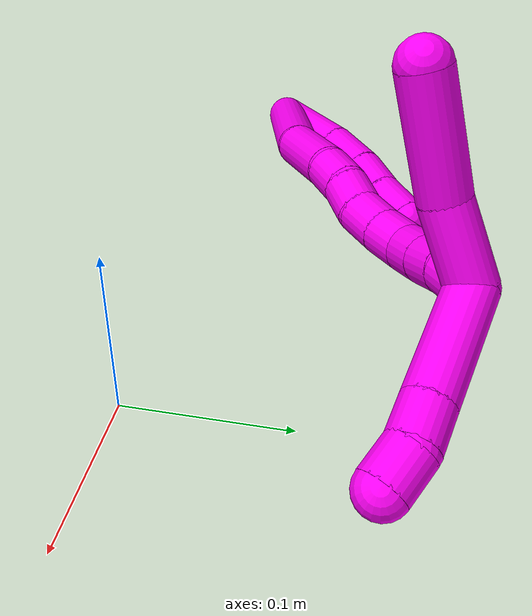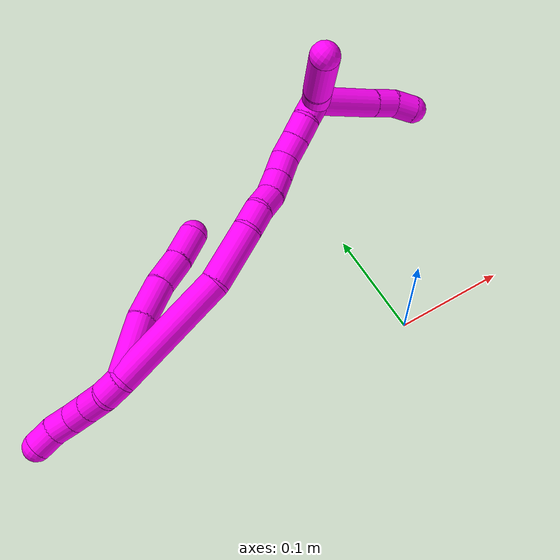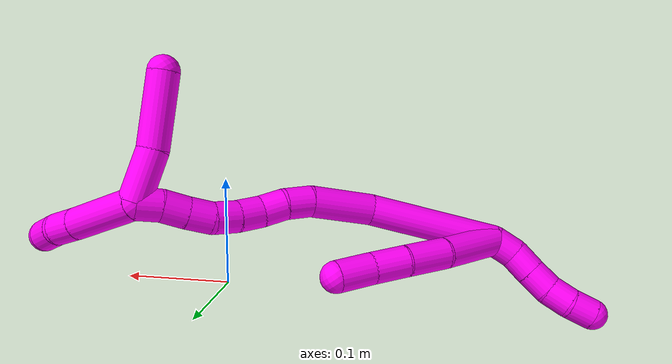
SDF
<sdf version="1.7">
 <world name="default">
  <model name="10">
   <static>0</static>
   <link name="10">
    <collision name="collision-cylinder-e_1_2_8">
     <pose>0.022596 0.012889 0.009663 -0.927495 0.951447 -0.504346</pose>
     <geometry><cylinder><radius>0.0125</radius><length>0.055501</length></cylinder></geometry>
     <surface>
      <friction><ode><mu>1.16</mu><mu2>1.16</mu2><slip1>0</slip1><slip2>0</slip2></ode></friction>
      <contact><ode><kp>1e+06</kp><kd>1</kd><max_vel>0</max_vel><min_depth>0.001</min_depth></ode></contact>
     </surface>
    </collision>
    <visual name="visual-cylinder-e_1_2_8">
     <pose>0.022596 0.012889 0.009663 -0.927495 0.951447 -0.504346</pose>
     <geometry><cylinder><radius>0.0125</radius><length>0.055501</length></cylinder></geometry>
     <material><ambient>1 0 0.964706 1</ambient></material>
    </visual>
    <collision name="collision-cylinder-e_2_8_9">
     <pose>0.060445 0.031482 0.026461 -0.674318 1.03121 -0.392229</pose>
     <geometry><cylinder><radius>0.0125</radius><length>0.035559</length></cylinder></geometry>
     <surface>
      <friction><ode><mu>1.16</mu><mu2>1.16</mu2><slip1>0</slip1><slip2>0</slip2></ode></friction>
      <contact><ode><kp>1e+06</kp><kd>1</kd><max_vel>0</max_vel><min_depth>0.001</min_depth></ode></contact>
     </surface>
    </collision>
    <visual name="visual-cylinder-e_2_8_9">
     <pose>0.060445 0.031482 0.026461 -0.674318 1.03121 -0.392229</pose>
     <geometry><cylinder><radius>0.0125</radius><length>0.035559</length></cylinder></geometry>
     <material><ambient>1 0 0.964706 1</ambient></material>
    </visual>
    <collision name="collision-cylinder-e_3_9_10">
     <pose>0.088632 0.039918 0.039335 -0.444476 1.11404 -0.279636</pose>
     <geometry><cylinder><radius>0.0125</radius><length>0.028821</length></cylinder></geometry>
     <surface>
      <friction><ode><mu>1.16</mu><mu2>1.16</mu2><slip1>0</slip1><slip2>0</slip2></ode></friction>
      <contact><ode><kp>1e+06</kp><kd>1</kd><max_vel>0</max_vel><min_depth>0.001</min_depth></ode></contact>
     </surface>
    </collision>
    <visual name="visual-cylinder-e_3_9_10">
     <pose>0.088632 0.039918 0.039335 -0.444476 1.11404 -0.279636</pose>
     <geometry><cylinder><radius>0.0125</radius><length>0.028821</length></cylinder></geometry>
     <material><ambient>1 0 0.964706 1</ambient></material>
    </visual>
    <collision name="collision-cylinder-e_4_10_6">
     <pose>0.114826 0.047011 0.050725 -0.657081 1.07698 -0.401794</pose>
     <geometry><cylinder><radius>0.0125</radius><length>0.03012</length></cylinder></geometry>
     <surface>
      <friction><ode><mu>1.16</mu><mu2>1.16</mu2><slip1>0</slip1><slip2>0</slip2></ode></friction>
      <contact><ode><kp>1e+06</kp><kd>1</kd><max_vel>0</max_vel><min_depth>0.001</min_depth></ode></contact>
     </surface>
    </collision>
    <visual name="visual-cylinder-e_4_10_6">
     <pose>0.114826 0.047011 0.050725 -0.657081 1.07698 -0.401794</pose>
     <geometry><cylinder><radius>0.0125</radius><length>0.03012</length></cylinder></geometry>
     <material><ambient>1 0 0.964706 1</ambient></material>
    </visual>
    <collision name="collision-cylinder-e_1_2_11">
     <pose>-0.003695 0.000799 -0.009258 -3.05554 -0.37842 2.69931</pose>
     <geometry><cylinder><radius>0.0125</radius><length>0.02</length></cylinder></geometry>
     <surface>
      <friction><ode><mu>1.16</mu><mu2>1.16</mu2><slip1>0</slip1><slip2>0</slip2></ode></friction>
      <contact><ode><kp>1e+06</kp><kd>1</kd><max_vel>0</max_vel><min_depth>0.001</min_depth></ode></contact>
     </surface>
    </collision>
    <visual name="visual-cylinder-e_1_2_11">
     <pose>-0.003695 0.000799 -0.009258 -3.05554 -0.37842 2.69931</pose>
     <geometry><cylinder><radius>0.0125</radius><length>0.02</length></cylinder></geometry>
     <material><ambient>1 0 0.964706 1</ambient></material>
    </visual>
    <collision name="collision-cylinder-e_2_11_12">
     <pose>-0.008305 0.003731 -0.028243 -2.92565 -0.091686 0.800744</pose>
     <geometry><cylinder><radius>0.0125</radius><length>0.02</length></cylinder></geometry>
     <surface>
      <friction><ode><mu>1.16</mu><mu2>1.16</mu2><slip1>0</slip1><slip2>0</slip2></ode></friction>
      <contact><ode><kp>1e+06</kp><kd>1</kd><max_vel>0</max_vel><min_depth>0.001</min_depth></ode></contact>
     </surface>
    </collision>
    <visual name="visual-cylinder-e_2_11_12">
     <pose>-0.008305 0.003731 -0.028243 -2.92565 -0.091686 0.800744</pose>
     <geometry><cylinder><radius>0.0125</radius><length>0.02</length></cylinder></geometry>
     <material><ambient>1 0 0.964706 1</ambient></material>
    </visual>
    <collision name="collision-cylinder-e_3_12_13">
     <pose>-0.010561 0.008048 -0.047636 -2.91941 -0.134463 1.08613</pose>
     <geometry><cylinder><radius>0.0125</radius><length>0.02</length></cylinder></geometry>
     <surface>
      <friction><ode><mu>1.16</mu><mu2>1.16</mu2><slip1>0</slip1><slip2>0</slip2></ode></friction>
      <contact><ode><kp>1e+06</kp><kd>1</kd><max_vel>0</max_vel><min_depth>0.001</min_depth></ode></contact>
     </surface>
    </collision>
    <visual name="visual-cylinder-e_3_12_13">
     <pose>-0.010561 0.008048 -0.047636 -2.91941 -0.134463 1.08613</pose>
     <geometry><cylinder><radius>0.0125</radius><length>0.02</length></cylinder></geometry>
     <material><ambient>1 0 0.964706 1</ambient></material>
    </visual>
    <collision name="collision-cylinder-e_4_13_14">
     <pose>-0.015256 0.012747 -0.066381 -2.87137 -0.342079 1.80803</pose>
     <geometry><cylinder><radius>0.0125</radius><length>0.02</length></cylinder></geometry>
     <surface>
      <friction><ode><mu>1.16</mu><mu2>1.16</mu2><slip1>0</slip1><slip2>0</slip2></ode></friction>
      <contact><ode><kp>1e+06</kp><kd>1</kd><max_vel>0</max_vel><min_depth>0.001</min_depth></ode></contact>
     </surface>
    </collision>
    <visual name="visual-cylinder-e_4_13_14">
     <pose>-0.015256 0.012747 -0.066381 -2.87137 -0.342079 1.80803</pose>
     <geometry><cylinder><radius>0.0125</radius><length>0.02</length></cylinder></geometry>
     <material><ambient>1 0 0.964706 1</ambient></material>
    </visual>
    <collision name="collision-cylinder-e_5_14_5">
     <pose>-0.023424 0.015896 -0.084202 -3.06917 -0.50218 2.86097</pose>
     <geometry><cylinder><radius>0.0125</radius><length>0.02</length></cylinder></geometry>
     <surface>
      <friction><ode><mu>1.16</mu><mu2>1.16</mu2><slip1>0</slip1><slip2>0</slip2></ode></friction>
      <contact><ode><kp>1e+06</kp><kd>1</kd><max_vel>0</max_vel><min_depth>0.001</min_depth></ode></contact>
     </surface>
    </collision>
    <visual name="visual-cylinder-e_5_14_5">
     <pose>-0.023424 0.015896 -0.084202 -3.06917 -0.50218 2.86097</pose>
     <geometry><cylinder><radius>0.0125</radius><length>0.02</length></cylinder></geometry>
     <material><ambient>1 0 0.964706 1</ambient></material>
    </visual>
    <collision name="collision-cylinder-e_1_2_15">
     <pose>0.034824 0.000315 0.039648 -0.007955 0.720698 -0.002998</pose>
     <geometry><cylinder><radius>0.0125</radius><length>0.105542</length></cylinder></geometry>
     <surface>
      <friction><ode><mu>1.16</mu><mu2>1.16</mu2><slip1>0</slip1><slip2>0</slip2></ode></friction>
      <contact><ode><kp>1e+06</kp><kd>1</kd><max_vel>0</max_vel><min_depth>0.001</min_depth></ode></contact>
     </surface>
    </collision>
    <visual name="visual-cylinder-e_1_2_15">
     <pose>0.034824 0.000315 0.039648 -0.007955 0.720698 -0.002998</pose>
     <geometry><cylinder><radius>0.0125</radius><length>0.105542</length></cylinder></geometry>
     <material><ambient>1 0 0.964706 1</ambient></material>
    </visual>
    <collision name="collision-cylinder-e_2_15_16">
     <pose>0.088421 0.006726 0.09608 -0.348355 0.810408 -0.150667</pose>
     <geometry><cylinder><radius>0.0125</radius><length>0.051818</length></cylinder></geometry>
     <surface>
      <friction><ode><mu>1.16</mu><mu2>1.16</mu2><slip1>0</slip1><slip2>0</slip2></ode></friction>
      <contact><ode><kp>1e+06</kp><kd>1</kd><max_vel>0</max_vel><min_depth>0.001</min_depth></ode></contact>
     </surface>
    </collision>
    <visual name="visual-cylinder-e_2_15_16">
     <pose>0.088421 0.006726 0.09608 -0.348355 0.810408 -0.150667</pose>
     <geometry><cylinder><radius>0.0125</radius><length>0.051818</length></cylinder></geometry>
     <material><ambient>1 0 0.964706 1</ambient></material>
    </visual>
    <collision name="collision-cylinder-e_3_16_17">
     <pose>0.116447 0.015663 0.117762 -0.525678 1.02168 -0.299345</pose>
     <geometry><cylinder><radius>0.0125</radius><length>0.021694</length></cylinder></geometry>
     <surface>
      <friction><ode><mu>1.16</mu><mu2>1.16</mu2><slip1>0</slip1><slip2>0</slip2></ode></friction>
      <contact><ode><kp>1e+06</kp><kd>1</kd><max_vel>0</max_vel><min_depth>0.001</min_depth></ode></contact>
     </surface>
    </collision>
    <visual name="visual-cylinder-e_3_16_17">
     <pose>0.116447 0.015663 0.117762 -0.525678 1.02168 -0.299345</pose>
     <geometry><cylinder><radius>0.0125</radius><length>0.021694</length></cylinder></geometry>
     <material><ambient>1 0 0.964706 1</ambient></material>
    </visual>
    <collision name="collision-cylinder-e_4_17_18">
     <pose>0.135174 0.019897 0.125591 -0.443521 1.24066 -0.319411</pose>
     <geometry><cylinder><radius>0.0125</radius><length>0.020031</length></cylinder></geometry>
     <surface>
      <friction><ode><mu>1.16</mu><mu2>1.16</mu2><slip1>0</slip1><slip2>0</slip2></ode></friction>
      <contact><ode><kp>1e+06</kp><kd>1</kd><max_vel>0</max_vel><min_depth>0.001</min_depth></ode></contact>
     </surface>
    </collision>
    <visual name="visual-cylinder-e_4_17_18">
     <pose>0.135174 0.019897 0.125591 -0.443521 1.24066 -0.319411</pose>
     <geometry><cylinder><radius>0.0125</radius><length>0.020031</length></cylinder></geometry>
     <material><ambient>1 0 0.964706 1</ambient></material>
    </visual>
    <collision name="collision-cylinder-e_5_18_19">
     <pose>0.153413 0.025064 0.132205 -0.797799 1.02928 -0.467953</pose>
     <geometry><cylinder><radius>0.0125</radius><length>0.020456</length></cylinder></geometry>
     <surface>
      <friction><ode><mu>1.16</mu><mu2>1.16</mu2><slip1>0</slip1><slip2>0</slip2></ode></friction>
      <contact><ode><kp>1e+06</kp><kd>1</kd><max_vel>0</max_vel><min_depth>0.001</min_depth></ode></contact>
     </surface>
    </collision>
    <visual name="visual-cylinder-e_5_18_19">
     <pose>0.153413 0.025064 0.132205 -0.797799 1.02928 -0.467953</pose>
     <geometry><cylinder><radius>0.0125</radius><length>0.020456</length></cylinder></geometry>
     <material><ambient>1 0 0.964706 1</ambient></material>
    </visual>
    <collision name="collision-cylinder-e_6_19_20">
     <pose>0.170232 0.03289 0.140559 -0.714378 0.915936 -0.363845</pose>
     <geometry><cylinder><radius>0.0125</radius><length>0.02031</length></cylinder></geometry>
     <surface>
      <friction><ode><mu>1.16</mu><mu2>1.16</mu2><slip1>0</slip1><slip2>0</slip2></ode></friction>
      <contact><ode><kp>1e+06</kp><kd>1</kd><max_vel>0</max_vel><min_depth>0.001</min_depth></ode></contact>
     </surface>
    </collision>
    <visual name="visual-cylinder-e_6_19_20">
     <pose>0.170232 0.03289 0.140559 -0.714378 0.915936 -0.363845</pose>
     <geometry><cylinder><radius>0.0125</radius><length>0.02031</length></cylinder></geometry>
     <material><ambient>1 0 0.964706 1</ambient></material>
    </visual>
    <collision name="collision-cylinder-e_7_20_21">
     <pose>0.184933 0.039649 0.152277 -0.366893 0.721998 -0.139865</pose>
     <geometry><cylinder><radius>0.0125</radius><length>0.020112</length></cylinder></geometry>
     <surface>
      <friction><ode><mu>1.16</mu><mu2>1.16</mu2><slip1>0</slip1><slip2>0</slip2></ode></friction>
      <contact><ode><kp>1e+06</kp><kd>1</kd><max_vel>0</max_vel><min_depth>0.001</min_depth></ode></contact>
     </surface>
    </collision>
    <visual name="visual-cylinder-e_7_20_21">
     <pose>0.184933 0.039649 0.152277 -0.366893 0.721998 -0.139865</pose>
     <geometry><cylinder><radius>0.0125</radius><length>0.020112</length></cylinder></geometry>
     <material><ambient>1 0 0.964706 1</ambient></material>
    </visual>
    <collision name="collision-cylinder-e_8_21_22">
     <pose>0.197696 0.045259 0.16669 -0.375308 0.657636 -0.129401</pose>
     <geometry><cylinder><radius>0.0125</radius><length>0.020014</length></cylinder></geometry>
     <surface>
      <friction><ode><mu>1.16</mu><mu2>1.16</mu2><slip1>0</slip1><slip2>0</slip2></ode></friction>
      <contact><ode><kp>1e+06</kp><kd>1</kd><max_vel>0</max_vel><min_depth>0.001</min_depth></ode></contact>
     </surface>
    </collision>
    <visual name="visual-cylinder-e_8_21_22">
     <pose>0.197696 0.045259 0.16669 -0.375308 0.657636 -0.129401</pose>
     <geometry><cylinder><radius>0.0125</radius><length>0.020014</length></cylinder></geometry>
     <material><ambient>1 0 0.964706 1</ambient></material>
    </visual>
    <collision name="collision-cylinder-e_9_22_1">
     <pose>0.211375 0.050894 0.180022 -0.429622 0.85638 -0.198512</pose>
     <geometry><cylinder><radius>0.0125</radius><length>0.020021</length></cylinder></geometry>
     <surface>
      <friction><ode><mu>1.16</mu><mu2>1.16</mu2><slip1>0</slip1><slip2>0</slip2></ode></friction>
      <contact><ode><kp>1e+06</kp><kd>1</kd><max_vel>0</max_vel><min_depth>0.001</min_depth></ode></contact>
     </surface>
    </collision>
    <visual name="visual-cylinder-e_9_22_1">
     <pose>0.211375 0.050894 0.180022 -0.429622 0.85638 -0.198512</pose>
     <geometry><cylinder><radius>0.0125</radius><length>0.020021</length></cylinder></geometry>
     <material><ambient>1 0 0.964706 1</ambient></material>
    </visual>
    <collision name="collision-cylinder-e_1_1_23">
     <pose>0.202214 0.052583 0.198322 0.084327 -0.933508 -0.04251</pose>
     <geometry><cylinder><radius>0.0125</radius><length>0.041617</length></cylinder></geometry>
     <surface>
      <friction><ode><mu>1.16</mu><mu2>1.16</mu2><slip1>0</slip1><slip2>0</slip2></ode></friction>
      <contact><ode><kp>1e+06</kp><kd>1</kd><max_vel>0</max_vel><min_depth>0.001</min_depth></ode></contact>
     </surface>
    </collision>
    <visual name="visual-cylinder-e_1_1_23">
     <pose>0.202214 0.052583 0.198322 0.084327 -0.933508 -0.04251</pose>
     <geometry><cylinder><radius>0.0125</radius><length>0.041617</length></cylinder></geometry>
     <material><ambient>1 0 0.964706 1</ambient></material>
    </visual>
    <collision name="collision-cylinder-e_2_23_4">
     <pose>0.165813 0.053173 0.232161 -0.075765 -0.739664 0.029384</pose>
     <geometry><cylinder><radius>0.0125</radius><length>0.058383</length></cylinder></geometry>
     <surface>
      <friction><ode><mu>1.16</mu><mu2>1.16</mu2><slip1>0</slip1><slip2>0</slip2></ode></friction>
      <contact><ode><kp>1e+06</kp><kd>1</kd><max_vel>0</max_vel><min_depth>0.001</min_depth></ode></contact>
     </surface>
    </collision>
    <visual name="visual-cylinder-e_2_23_4">
     <pose>0.165813 0.053173 0.232161 -0.075765 -0.739664 0.029384</pose>
     <geometry><cylinder><radius>0.0125</radius><length>0.058383</length></cylinder></geometry>
     <material><ambient>1 0 0.964706 1</ambient></material>
    </visual>
    <collision name="collision-cylinder-e_1_1_24">
     <pose>0.241583 0.036538 0.193353 1.16366 0.882902 0.602746</pose>
     <geometry><cylinder><radius>0.0125</radius><length>0.058622</length></cylinder></geometry>
     <surface>
      <friction><ode><mu>1.16</mu><mu2>1.16</mu2><slip1>0</slip1><slip2>0</slip2></ode></friction>
      <contact><ode><kp>1e+06</kp><kd>1</kd><max_vel>0</max_vel><min_depth>0.001</min_depth></ode></contact>
     </surface>
    </collision>
    <visual name="visual-cylinder-e_1_1_24">
     <pose>0.241583 0.036538 0.193353 1.16366 0.882902 0.602746</pose>
     <geometry><cylinder><radius>0.0125</radius><length>0.058622</length></cylinder></geometry>
     <material><ambient>1 0 0.964706 1</ambient></material>
    </visual>
    <collision name="collision-cylinder-e_2_24_25">
     <pose>0.272293 0.013488 0.203756 1.10005 0.878446 0.560957</pose>
     <geometry><cylinder><radius>0.0125</radius><length>0.020955</length></cylinder></geometry>
     <surface>
      <friction><ode><mu>1.16</mu><mu2>1.16</mu2><slip1>0</slip1><slip2>0</slip2></ode></friction>
      <contact><ode><kp>1e+06</kp><kd>1</kd><max_vel>0</max_vel><min_depth>0.001</min_depth></ode></contact>
     </surface>
    </collision>
    <visual name="visual-cylinder-e_2_24_25">
     <pose>0.272293 0.013488 0.203756 1.10005 0.878446 0.560957</pose>
     <geometry><cylinder><radius>0.0125</radius><length>0.020955</length></cylinder></geometry>
     <material><ambient>1 0 0.964706 1</ambient></material>
    </visual>
    <collision name="collision-cylinder-e_3_25_3">
     <pose>0.286592 -0.000406 0.208366 1.37463 0.656618 0.545285</pose>
     <geometry><cylinder><radius>0.0125</radius><length>0.020423</length></cylinder></geometry>
     <surface>
      <friction><ode><mu>1.16</mu><mu2>1.16</mu2><slip1>0</slip1><slip2>0</slip2></ode></friction>
      <contact><ode><kp>1e+06</kp><kd>1</kd><max_vel>0</max_vel><min_depth>0.001</min_depth></ode></contact>
     </surface>
    </collision>
    <visual name="visual-cylinder-e_3_25_3">
     <pose>0.286592 -0.000406 0.208366 1.37463 0.656618 0.545285</pose>
     <geometry><cylinder><radius>0.0125</radius><length>0.020423</length></cylinder></geometry>
     <material><ambient>1 0 0.964706 1</ambient></material>
    </visual>
    <collision name="collision-sphere-3">
     <pose>0.292825 -0.008339 0.209942 0 -0 0</pose>
     <geometry><sphere><radius>0.0125</radius></sphere></geometry>
     <surface>
      <friction><ode><mu>1.16</mu><mu2>1.16</mu2><slip1>0</slip1><slip2>0</slip2></ode></friction>
      <contact><ode><kp>1e+06</kp><kd>1</kd><max_vel>0</max_vel><min_depth>0.001</min_depth></ode></contact>
     </surface>
    </collision>
    <visual name="visual-sphere-3">
     <pose>0.292825 -0.008339 0.209942 0 -0 0</pose>
     <geometry><sphere><radius>0.0125</radius></sphere></geometry>
     <material><ambient>1 0 0.964706 1</ambient></material>
    </visual>
    <collision name="collision-sphere-25">
     <pose>0.280358 0.007527 0.206789 0 -0 0</pose>
     <geometry><sphere><radius>0.0125</radius></sphere></geometry>
     <surface>
      <friction><ode><mu>1.16</mu><mu2>1.16</mu2><slip1>0</slip1><slip2>0</slip2></ode></friction>
      <contact><ode><kp>1e+06</kp><kd>1</kd><max_vel>0</max_vel><min_depth>0.001</min_depth></ode></contact>
     </surface>
    </collision>
    <visual name="visual-sphere-25">
     <pose>0.280358 0.007527 0.206789 0 -0 0</pose>
     <geometry><sphere><radius>0.0125</radius></sphere></geometry>
     <material><ambient>1 0 0.964706 1</ambient></material>
    </visual>
    <collision name="collision-sphere-24">
     <pose>0.264228 0.019449 0.200722 0 -0 0</pose>
     <geometry><sphere><radius>0.0125</radius></sphere></geometry>
     <surface>
      <friction><ode><mu>1.16</mu><mu2>1.16</mu2><slip1>0</slip1><slip2>0</slip2></ode></friction>
      <contact><ode><kp>1e+06</kp><kd>1</kd><max_vel>0</max_vel><min_depth>0.001</min_depth></ode></contact>
     </surface>
    </collision>
    <visual name="visual-sphere-24">
     <pose>0.264228 0.019449 0.200722 0 -0 0</pose>
     <geometry><sphere><radius>0.0125</radius></sphere></geometry>
     <material><ambient>1 0 0.964706 1</ambient></material>
    </visual>
    <collision name="collision-sphere-4">
     <pose>0.146137 0.054805 0.253663 0 -0 0</pose>
     <geometry><sphere><radius>0.0125</radius></sphere></geometry>
     <surface>
      <friction><ode><mu>1.16</mu><mu2>1.16</mu2><slip1>0</slip1><slip2>0</slip2></ode></friction>
      <contact><ode><kp>1e+06</kp><kd>1</kd><max_vel>0</max_vel><min_depth>0.001</min_depth></ode></contact>
     </surface>
    </collision>
    <visual name="visual-sphere-4">
     <pose>0.146137 0.054805 0.253663 0 -0 0</pose>
     <geometry><sphere><radius>0.0125</radius></sphere></geometry>
     <material><ambient>1 0 0.964706 1</ambient></material>
    </visual>
    <collision name="collision-sphere-23">
     <pose>0.18549 0.05154 0.210659 0 -0 0</pose>
     <geometry><sphere><radius>0.0125</radius></sphere></geometry>
     <surface>
      <friction><ode><mu>1.16</mu><mu2>1.16</mu2><slip1>0</slip1><slip2>0</slip2></ode></friction>
      <contact><ode><kp>1e+06</kp><kd>1</kd><max_vel>0</max_vel><min_depth>0.001</min_depth></ode></contact>
     </surface>
    </collision>
    <visual name="visual-sphere-23">
     <pose>0.18549 0.05154 0.210659 0 -0 0</pose>
     <geometry><sphere><radius>0.0125</radius></sphere></geometry>
     <material><ambient>1 0 0.964706 1</ambient></material>
    </visual>
    <collision name="collision-sphere-1">
     <pose>0.218938 0.053626 0.185984 0 -0 0</pose>
     <geometry><sphere><radius>0.0125</radius></sphere></geometry>
     <surface>
      <friction><ode><mu>1.16</mu><mu2>1.16</mu2><slip1>0</slip1><slip2>0</slip2></ode></friction>
      <contact><ode><kp>1e+06</kp><kd>1</kd><max_vel>0</max_vel><min_depth>0.001</min_depth></ode></contact>
     </surface>
    </collision>
    <visual name="visual-sphere-1">
     <pose>0.218938 0.053626 0.185984 0 -0 0</pose>
     <geometry><sphere><radius>0.0125</radius></sphere></geometry>
     <material><ambient>1 0 0.964706 1</ambient></material>
    </visual>
    <collision name="collision-sphere-22">
     <pose>0.203812 0.048162 0.174059 0 -0 0</pose>
     <geometry><sphere><radius>0.0125</radius></sphere></geometry>
     <surface>
      <friction><ode><mu>1.16</mu><mu2>1.16</mu2><slip1>0</slip1><slip2>0</slip2></ode></friction>
      <contact><ode><kp>1e+06</kp><kd>1</kd><max_vel>0</max_vel><min_depth>0.001</min_depth></ode></contact>
     </surface>
    </collision>
    <visual name="visual-sphere-22">
     <pose>0.203812 0.048162 0.174059 0 -0 0</pose>
     <geometry><sphere><radius>0.0125</radius></sphere></geometry>
     <material><ambient>1 0 0.964706 1</ambient></material>
    </visual>
    <collision name="collision-sphere-21">
     <pose>0.191579 0.042356 0.159322 0 -0 0</pose>
     <geometry><sphere><radius>0.0125</radius></sphere></geometry>
     <surface>
      <friction><ode><mu>1.16</mu><mu2>1.16</mu2><slip1>0</slip1><slip2>0</slip2></ode></friction>
      <contact><ode><kp>1e+06</kp><kd>1</kd><max_vel>0</max_vel><min_depth>0.001</min_depth></ode></contact>
     </surface>
    </collision>
    <visual name="visual-sphere-21">
     <pose>0.191579 0.042356 0.159322 0 -0 0</pose>
     <geometry><sphere><radius>0.0125</radius></sphere></geometry>
     <material><ambient>1 0 0.964706 1</ambient></material>
    </visual>
    <collision name="collision-sphere-11">
     <pose>-0.007389 0.001597 -0.018516 0 -0 0</pose>
     <geometry><sphere><radius>0.0125</radius></sphere></geometry>
     <surface>
      <friction><ode><mu>1.16</mu><mu2>1.16</mu2><slip1>0</slip1><slip2>0</slip2></ode></friction>
      <contact><ode><kp>1e+06</kp><kd>1</kd><max_vel>0</max_vel><min_depth>0.001</min_depth></ode></contact>
     </surface>
    </collision>
    <visual name="visual-sphere-11">
     <pose>-0.007389 0.001597 -0.018516 0 -0 0</pose>
     <geometry><sphere><radius>0.0125</radius></sphere></geometry>
     <material><ambient>1 0 0.964706 1</ambient></material>
    </visual>
    <collision name="collision-sphere-6">
     <pose>0.128086 0.051371 0.056376 0 -0 0</pose>
     <geometry><sphere><radius>0.0125</radius></sphere></geometry>
     <surface>
      <friction><ode><mu>1.16</mu><mu2>1.16</mu2><slip1>0</slip1><slip2>0</slip2></ode></friction>
      <contact><ode><kp>1e+06</kp><kd>1</kd><max_vel>0</max_vel><min_depth>0.001</min_depth></ode></contact>
     </surface>
    </collision>
    <visual name="visual-sphere-6">
     <pose>0.128086 0.051371 0.056376 0 -0 0</pose>
     <geometry><sphere><radius>0.0125</radius></sphere></geometry>
     <material><ambient>1 0 0.964706 1</ambient></material>
    </visual>
    <collision name="collision-sphere-10">
     <pose>0.101565 0.042651 0.045073 0 -0 0</pose>
     <geometry><sphere><radius>0.0125</radius></sphere></geometry>
     <surface>
      <friction><ode><mu>1.16</mu><mu2>1.16</mu2><slip1>0</slip1><slip2>0</slip2></ode></friction>
      <contact><ode><kp>1e+06</kp><kd>1</kd><max_vel>0</max_vel><min_depth>0.001</min_depth></ode></contact>
     </surface>
    </collision>
    <visual name="visual-sphere-10">
     <pose>0.101565 0.042651 0.045073 0 -0 0</pose>
     <geometry><sphere><radius>0.0125</radius></sphere></geometry>
     <material><ambient>1 0 0.964706 1</ambient></material>
    </visual>
    <collision name="collision-sphere-9">
     <pose>0.075699 0.037186 0.033597 0 -0 0</pose>
     <geometry><sphere><radius>0.0125</radius></sphere></geometry>
     <surface>
      <friction><ode><mu>1.16</mu><mu2>1.16</mu2><slip1>0</slip1><slip2>0</slip2></ode></friction>
      <contact><ode><kp>1e+06</kp><kd>1</kd><max_vel>0</max_vel><min_depth>0.001</min_depth></ode></contact>
     </surface>
    </collision>
    <visual name="visual-sphere-9">
     <pose>0.075699 0.037186 0.033597 0 -0 0</pose>
     <geometry><sphere><radius>0.0125</radius></sphere></geometry>
     <material><ambient>1 0 0.964706 1</ambient></material>
    </visual>
    <collision name="collision-sphere-2">
     <geometry><sphere><radius>0.0125</radius></sphere></geometry>
     <surface>
      <friction><ode><mu>1.16</mu><mu2>1.16</mu2><slip1>0</slip1><slip2>0</slip2></ode></friction>
      <contact><ode><kp>1e+06</kp><kd>1</kd><max_vel>0</max_vel><min_depth>0.001</min_depth></ode></contact>
     </surface>
    </collision>
    <visual name="visual-sphere-2">
     <geometry><sphere><radius>0.0125</radius></sphere></geometry>
     <material><ambient>1 0 0.964706 1</ambient></material>
    </visual>
    <collision name="collision-sphere-19">
     <pose>0.162178 0.028837 0.135886 0 -0 0</pose>
     <geometry><sphere><radius>0.0125</radius></sphere></geometry>
     <surface>
      <friction><ode><mu>1.16</mu><mu2>1.16</mu2><slip1>0</slip1><slip2>0</slip2></ode></friction>
      <contact><ode><kp>1e+06</kp><kd>1</kd><max_vel>0</max_vel><min_depth>0.001</min_depth></ode></contact>
     </surface>
    </collision>
    <visual name="visual-sphere-19">
     <pose>0.162178 0.028837 0.135886 0 -0 0</pose>
     <geometry><sphere><radius>0.0125</radius></sphere></geometry>
     <material><ambient>1 0 0.964706 1</ambient></material>
    </visual>
    <collision name="collision-sphere-8">
     <pose>0.045192 0.025779 0.019326 0 -0 0</pose>
     <geometry><sphere><radius>0.0125</radius></sphere></geometry>
     <surface>
      <friction><ode><mu>1.16</mu><mu2>1.16</mu2><slip1>0</slip1><slip2>0</slip2></ode></friction>
      <contact><ode><kp>1e+06</kp><kd>1</kd><max_vel>0</max_vel><min_depth>0.001</min_depth></ode></contact>
     </surface>
    </collision>
    <visual name="visual-sphere-8">
     <pose>0.045192 0.025779 0.019326 0 -0 0</pose>
     <geometry><sphere><radius>0.0125</radius></sphere></geometry>
     <material><ambient>1 0 0.964706 1</ambient></material>
    </visual>
    <collision name="collision-sphere-12">
     <pose>-0.00922 0.005865 -0.03797 0 -0 0</pose>
     <geometry><sphere><radius>0.0125</radius></sphere></geometry>
     <surface>
      <friction><ode><mu>1.16</mu><mu2>1.16</mu2><slip1>0</slip1><slip2>0</slip2></ode></friction>
      <contact><ode><kp>1e+06</kp><kd>1</kd><max_vel>0</max_vel><min_depth>0.001</min_depth></ode></contact>
     </surface>
    </collision>
    <visual name="visual-sphere-12">
     <pose>-0.00922 0.005865 -0.03797 0 -0 0</pose>
     <geometry><sphere><radius>0.0125</radius></sphere></geometry>
     <material><ambient>1 0 0.964706 1</ambient></material>
    </visual>
    <collision name="collision-sphere-13">
     <pose>-0.011901 0.010232 -0.057302 0 -0 0</pose>
     <geometry><sphere><radius>0.0125</radius></sphere></geometry>
     <surface>
      <friction><ode><mu>1.16</mu><mu2>1.16</mu2><slip1>0</slip1><slip2>0</slip2></ode></friction>
      <contact><ode><kp>1e+06</kp><kd>1</kd><max_vel>0</max_vel><min_depth>0.001</min_depth></ode></contact>
     </surface>
    </collision>
    <visual name="visual-sphere-13">
     <pose>-0.011901 0.010232 -0.057302 0 -0 0</pose>
     <geometry><sphere><radius>0.0125</radius></sphere></geometry>
     <material><ambient>1 0 0.964706 1</ambient></material>
    </visual>
    <collision name="collision-sphere-14">
     <pose>-0.01861 0.015262 -0.075459 0 -0 0</pose>
     <geometry><sphere><radius>0.0125</radius></sphere></geometry>
     <surface>
      <friction><ode><mu>1.16</mu><mu2>1.16</mu2><slip1>0</slip1><slip2>0</slip2></ode></friction>
      <contact><ode><kp>1e+06</kp><kd>1</kd><max_vel>0</max_vel><min_depth>0.001</min_depth></ode></contact>
     </surface>
    </collision>
    <visual name="visual-sphere-14">
     <pose>-0.01861 0.015262 -0.075459 0 -0 0</pose>
     <geometry><sphere><radius>0.0125</radius></sphere></geometry>
     <material><ambient>1 0 0.964706 1</ambient></material>
    </visual>
    <collision name="collision-sphere-5">
     <pose>-0.028237 0.01653 -0.092944 0 -0 0</pose>
     <geometry><sphere><radius>0.0125</radius></sphere></geometry>
     <surface>
      <friction><ode><mu>1.16</mu><mu2>1.16</mu2><slip1>0</slip1><slip2>0</slip2></ode></friction>
      <contact><ode><kp>1e+06</kp><kd>1</kd><max_vel>0</max_vel><min_depth>0.001</min_depth></ode></contact>
     </surface>
    </collision>
    <visual name="visual-sphere-5">
     <pose>-0.028237 0.01653 -0.092944 0 -0 0</pose>
     <geometry><sphere><radius>0.0125</radius></sphere></geometry>
     <material><ambient>1 0 0.964706 1</ambient></material>
    </visual>
    <collision name="collision-sphere-15">
     <pose>0.069648 0.000631 0.079296 0 -0 0</pose>
     <geometry><sphere><radius>0.0125</radius></sphere></geometry>
     <surface>
      <friction><ode><mu>1.16</mu><mu2>1.16</mu2><slip1>0</slip1><slip2>0</slip2></ode></friction>
      <contact><ode><kp>1e+06</kp><kd>1</kd><max_vel>0</max_vel><min_depth>0.001</min_depth></ode></contact>
     </surface>
    </collision>
    <visual name="visual-sphere-15">
     <pose>0.069648 0.000631 0.079296 0 -0 0</pose>
     <geometry><sphere><radius>0.0125</radius></sphere></geometry>
     <material><ambient>1 0 0.964706 1</ambient></material>
    </visual>
    <collision name="collision-sphere-16">
     <pose>0.107194 0.012822 0.112865 0 -0 0</pose>
     <geometry><sphere><radius>0.0125</radius></sphere></geometry>
     <surface>
      <friction><ode><mu>1.16</mu><mu2>1.16</mu2><slip1>0</slip1><slip2>0</slip2></ode></friction>
      <contact><ode><kp>1e+06</kp><kd>1</kd><max_vel>0</max_vel><min_depth>0.001</min_depth></ode></contact>
     </surface>
    </collision>
    <visual name="visual-sphere-16">
     <pose>0.107194 0.012822 0.112865 0 -0 0</pose>
     <geometry><sphere><radius>0.0125</radius></sphere></geometry>
     <material><ambient>1 0 0.964706 1</ambient></material>
    </visual>
    <collision name="collision-sphere-17">
     <pose>0.125699 0.018503 0.122659 0 -0 0</pose>
     <geometry><sphere><radius>0.0125</radius></sphere></geometry>
     <surface>
      <friction><ode><mu>1.16</mu><mu2>1.16</mu2><slip1>0</slip1><slip2>0</slip2></ode></friction>
      <contact><ode><kp>1e+06</kp><kd>1</kd><max_vel>0</max_vel><min_depth>0.001</min_depth></ode></contact>
     </surface>
    </collision>
    <visual name="visual-sphere-17">
     <pose>0.125699 0.018503 0.122659 0 -0 0</pose>
     <geometry><sphere><radius>0.0125</radius></sphere></geometry>
     <material><ambient>1 0 0.964706 1</ambient></material>
    </visual>
    <collision name="collision-sphere-18">
     <pose>0.144648 0.02129 0.128524 0 -0 0</pose>
     <geometry><sphere><radius>0.0125</radius></sphere></geometry>
     <surface>
      <friction><ode><mu>1.16</mu><mu2>1.16</mu2><slip1>0</slip1><slip2>0</slip2></ode></friction>
      <contact><ode><kp>1e+06</kp><kd>1</kd><max_vel>0</max_vel><min_depth>0.001</min_depth></ode></contact>
     </surface>
    </collision>
    <visual name="visual-sphere-18">
     <pose>0.144648 0.02129 0.128524 0 -0 0</pose>
     <geometry><sphere><radius>0.0125</radius></sphere></geometry>
     <material><ambient>1 0 0.964706 1</ambient></material>
    </visual>
    <collision name="collision-sphere-20">
     <pose>0.178287 0.036942 0.145232 0 -0 0</pose>
     <geometry><sphere><radius>0.0125</radius></sphere></geometry>
     <surface>
      <friction><ode><mu>1.16</mu><mu2>1.16</mu2><slip1>0</slip1><slip2>0</slip2></ode></friction>
      <contact><ode><kp>1e+06</kp><kd>1</kd><max_vel>0</max_vel><min_depth>0.001</min_depth></ode></contact>
     </surface>
    </collision>
    <visual name="visual-sphere-20">
     <pose>0.178287 0.036942 0.145232 0 -0 0</pose>
     <geometry><sphere><radius>0.0125</radius></sphere></geometry>
     <material><ambient>1 0 0.964706 1</ambient></material>
    </visual>
    <inertial>
     <pose>0.112005 0.023944 0.094517 0 -0 0</pose>
     <mass>0.75</mass>
     <inertia>
      <ixx>0.000163</ixx>
      <ixy>0</ixy>
      <ixz>0</ixz>
      <iyy>0.000202</iyy>
      <iyz>0</iyz>
      <izz>-9.3e-05</izz>
     </inertia>
    </inertial>
   </link>
   <pose>-0.244533 0.050087 0.068805 0.325711 0.554806 0.489198</pose>
  </model>
 </world>
</sdf>
